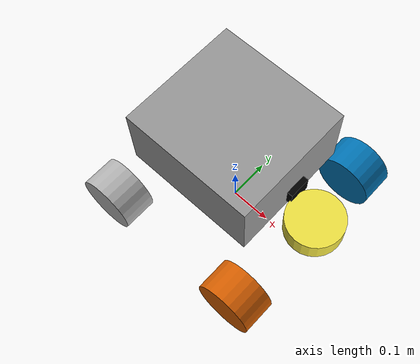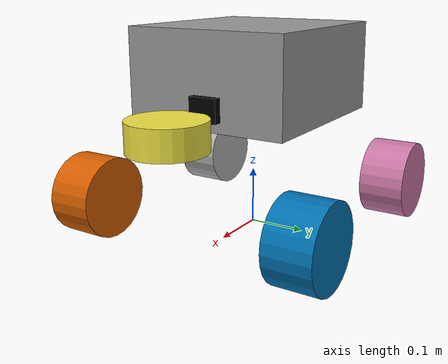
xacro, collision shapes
<?xml version="1.0"?>
<robot xmlns:xacro="http://www.ros.org/wiki/xacro" name="four_wheel_rover">

  <!-- Robot Geometry Parameters -->
  <xacro:property name="L" value="0.31348"/>   <!-- length -->
  <xacro:property name="W" value="0.290"/>     <!-- width -->
  <xacro:property name="H" value="0.160"/>     <!-- height -->
  <xacro:property name="wheel_r" value="0.07"/>  <!-- radius 7cm (14cm diameter) -->
  <xacro:property name="wheel_w" value="0.08"/>  <!-- width -->
  <xacro:property name="clearance" value="0.1325"/>  <!-- 215 mm -->

  <!-- Slight outside offset so wheels stick out correctly -->
  <xacro:property name="wheel_y_offset" value="${W/2 + wheel_w/2 + 0.02}"/>
  <xacro:property name="wheel_x_front" value="${L/2 + 0.03}"/>
  <xacro:property name="wheel_x_back"  value="-${L/2 + 0.02}"/>

  <!-- Physical Material + Mass  -->
  <xacro:property name="rho" value="2700"/>
  <!-- pi was removed because xacro may predefine it in some environments -->

  <!-- Body mass -->
  <xacro:property name="m_body" value="39.27"/>

  <!-- Wheel mass -->
  <xacro:property name="m_wheel" value="1.69"/>

  <!-- Body inertia -->
  <xacro:property name="Ixx_body" value="0.359"/>
  <xacro:property name="Iyy_body" value="0.406"/>
  <xacro:property name="Izz_body" value="0.596"/>

  <!-- Wheel inertia -->
  <xacro:property name="I_wheel_axial" value="0.00196"/>
  <xacro:property name="I_wheel_zz" value="0.00212"/>

  <!-- Base footprint -->
  <link name="base_footprint"/>

  <!-- BODY LINK -->
  <link name="base_link">

    <visual>
      <origin xyz="0 0 ${wheel_r + clearance + H/2}" rpy="0 0 0"/>
      <geometry>
        <box size="${L} ${W} ${H}"/>
      </geometry>
      <material name="grey"><color rgba="0.6 0.6 0.6 1"/></material>
    </visual>

    <collision>
      <origin xyz="0 0 ${wheel_r + clearance + H/2}" rpy="0 0 0"/>
      <geometry>
        <box size="${L} ${W} ${H}"/>
      </geometry>
    </collision>

    <inertial>
      <origin xyz="0 0 ${wheel_r + clearance + H/2}" rpy="0 0 0"/>
      <mass value="${m_body}"/>
      <inertia ixx="${Ixx_body}" ixy="0" ixz="0"
               iyy="${Iyy_body}" iyz="0"
               izz="${Izz_body}"/>
    </inertial>
  </link>

  <joint name="base_joint" type="fixed">
    <parent link="base_footprint"/>
    <child link="base_link"/>
  </joint>

  <!-- IMU LINK -->
  <link name="imu_link">
    <visual>
      <origin xyz="0 0 0" rpy="0 0 0"/>
      <geometry>
        <box size="0.08 0.05 0.04"/>
      </geometry>
      <material name="black"><color rgba="0.0 0.0 0.0 1"/></material>
    </visual>

    <collision>
      <origin xyz="0 0 0" rpy="0 0 0"/>
      <geometry>
        <box size="0.08 0.05 0.04"/>
      </geometry>
    </collision>

    <inertial>
      <mass value="0.2"/>
      <origin xyz="0 0 0" rpy="0 0 0"/>
      <inertia ixx="0.0005" ixy="0.0" ixz="0.0" iyy="0.0005" iyz="0.0" izz="0.0005"/>
    </inertial>
  </link>

  <joint name="imu_joint" type="fixed">
    <parent link="base_link"/>
    <child link="imu_link"/>
    <origin xyz="0.13 0.01 0.24" rpy="0 0 0"/>
  </joint>

  <!-- WHEEL MACRO -->
  <xacro:macro name="wheel" params="wheel_name x y mesh_stl mesh_rpy joint_axis">
    <link name="${wheel_name}_link">
      <visual>
        <!-- apply mesh_rpy only here (no extra implicit rotations) -->
        <origin xyz="0 0 0" rpy="${mesh_rpy}"/>
        <geometry>
          <mesh filename="${mesh_stl}" scale="1.4 1.4 1.4"/>
        </geometry>
      </visual>

      <collision>
        <!-- approximate collision as cylinder so collisions behave nicely -->
        <!-- collision origin rotated to put cylinder axis aligned with joint axis if needed -->
        <origin xyz="0 0 0" rpy="${mesh_rpy}"/>
        <geometry>
          <cylinder radius="${wheel_r}" length="${wheel_w}"/>
        </geometry>
      </collision>

      <inertial>
        <origin xyz="0 0 0" rpy="${mesh_rpy}"/>
        <mass value="${m_wheel}"/>
        <!-- simple wheel inertia -->
        <inertia ixx="0.00089" ixy="0" ixz="0" iyy="0.00089" iyz="0" izz="0.0013057"/>
      </inertial>
    </link>

    <joint name="${wheel_name}_joint" type="continuous">
      <!-- joint placed at the wheel contact point: z set to wheel_r -->
      <!-- joint origin uses x,y from macro + wheel_r -->
      <origin xyz="${x} ${y} ${wheel_r}" rpy="0 0 0"/>
      <parent link="base_link"/>
      <child link="${wheel_name}_link"/>
      <!-- allow the user-supplied axis for the joint -->
      <axis xyz="${joint_axis}"/>
      <dynamics damping="0.1" friction="0.1"/>
    </joint>
  </xacro:macro>

  <!-- LiDAR link (visual/collision/inertial only) -->
  <link name="lidar_link">
    <visual>
      <origin xyz="0 0 0" rpy="0 0 0"/>
      <geometry>
          <mesh filename="package://rover_description/meshes/Lidar.STL" scale="1 1 1"/>
      </geometry>

    </visual>

    <collision>
      <origin xyz="0 0 0" rpy="0 0 0"/>
      <geometry>
        <cylinder radius="0.065" length="0.05"/>
      </geometry>
    </collision>

    <inertial>
      <mass value="0.3"/>
      <origin xyz="0 0 0" rpy="0 0 0"/>
      <inertia ixx="0.001" ixy="0.0" ixz="0.0" iyy="0.001" iyz="0.0" izz="0.001"/>
    </inertial>
  </link>

  <!-- LiDAR joint -->
  <joint name="lidar_joint" type="fixed">
    <parent link="base_link"/>
    <child link="lidar_link"/>
    <!-- Mount at front-center of rover, facing forward horizontally -->
    <origin xyz="0.23 -0.01 0.21" rpy="0 0 0"/>
  </joint>

  <xacro:if value="false">
    <!-- Camera link + optical frame -->
    <link name="camera_link">
      <visual>
        <!-- small housing placed on the front of the rover -->
        <origin xyz="0 0 0" rpy="0 0 0"/>
        <geometry>
          <box size="0.08 0.05 0.04"/>
        </geometry>
        <material name="black"><color rgba="0.0 0.0 0.0 1"/></material>
      </visual>

      <collision>
        <origin xyz="0 0 0" rpy="0 0 0"/>
        <geometry>
          <box size="0.08 0.05 0.04"/>
        </geometry>
      </collision>

      <inertial>
        <mass value="0.2"/>
        <origin xyz="0 0 0" rpy="0 0 0"/>
        <inertia ixx="0.0005" ixy="0.0" ixz="0.0" iyy="0.0005" iyz="0.0" izz="0.0005"/>
      </inertial>
    </link>

    <!-- Camera optical frame (use this frame for image topic) -->
    <link name="camera_optical_frame"/>

    <!-- Camera mount joint -->
    <joint name="camera_joint" type="fixed">
      <parent link="base_link"/>
      <child link="camera_link"/>
      <!-- placed on front-center at top; facing forward horizontally -->
      <origin xyz="0.13 -0.01 0.45" rpy="0 0 0"/>
    </joint>

    <!-- Optical frame fixed to camera_link (allows correct TF for image viewer/rviz) -->
    <joint name="camera_to_optical" type="fixed">
      <parent link="camera_link"/>
      <child link="camera_optical_frame"/>
      <!-- keep identity transform; change rpy if you need optical axes rotated -->
      <origin xyz="0 0 0" rpy="0 0 0"/>
    </joint>
  </xacro:if>

  <!-- FOUR WHEELS -->

  <!-- Front Left -->
    <xacro:wheel wheel_name="front_left"
                    x="${wheel_x_front}"
                    y="${wheel_y_offset}"
                    mesh_stl="package://rover_description/meshes/wheel4.STL"
                    mesh_rpy="-1.57 0 0"
                    joint_axis="0 0 1"/>
  <!-- Front Right -->
    <xacro:wheel wheel_name="front_right"
                    x="${wheel_x_front}"
                    y="-${wheel_y_offset}"
                    mesh_stl="package://rover_description/meshes/wheel2.STL"
                    mesh_rpy="-1.57 0 0"
                    joint_axis="0 0 1"/>
    <!-- Rear Left -->
    <xacro:wheel wheel_name="rear_left"
                    x="${wheel_x_back}"
                    y="${wheel_y_offset}"
                    mesh_stl="package://rover_description/meshes/wheel3.STL"
                    mesh_rpy="-1.57 0 0"
                    joint_axis="0 0 1"/>
    <!-- Rear Right -->
    <xacro:wheel wheel_name="rear_right"
                    x="${wheel_x_back}"
                    y="-${wheel_y_offset}"
                    mesh_stl="package://rover_description/meshes/wheel1.STL"
                    mesh_rpy="-1.57 0 0"
                    joint_axis="0 0 1"/>

  <!-- GAZEBO PLUGINS (Inline for Harmonic) -->
  <gazebo>

    <plugin filename="libgz-sim8-diff-drive-system.so" name="gz::sim::systems::DiffDrive">
      <!-- LEFT wheels -->
      <left_joint>front_left_joint</left_joint>
      <left_joint>rear_left_joint</left_joint>

      <!-- RIGHT wheels -->
      <right_joint>front_right_joint</right_joint>
      <right_joint>rear_right_joint</right_joint>

      <!-- geometry -->
      <wheel_separation>${2 * wheel_y_offset}</wheel_separation>
      <wheel_diameter>${2 * wheel_r}</wheel_diameter>

      <!-- topics -->
      <topic>cmd_vel</topic>
      <odom_topic>odom</odom_topic>
      <tf_topic>/tf</tf_topic>

      <!-- frames -->
      <frame_id>odom</frame_id>
      <child_frame_id>base_footprint</child_frame_id>

      <odom_publisher_frequency>50</odom_publisher_frequency>
    </plugin>

    <plugin filename="libgz-sim8-joint-state-publisher-system.so"
            name="gz::sim::systems::JointStatePublisher">
      <topic>joint_states</topic>
    </plugin>

    <!-- Global sensors system (required for all sensors) -->
    <plugin filename="libgz-sim8-sensors-system.so"
            name="gz::sim::systems::Sensors">
    </plugin>
  </gazebo>

  <!-- LiDAR sensor attached to lidar_link (proper gazebo reference structure) -->
  <gazebo reference="lidar_link">
    <sensor name="lidar_sensor" type="gpu_lidar">
      <frame_id>lidar_link</frame_id>
      <pose>0 0 0 0 0 0</pose>
      <topic>scan</topic>
      <update_rate>10</update_rate>
      <ray>
        <scan>
          <horizontal>
            <samples>720</samples>
            <resolution>1</resolution>
            <min_angle>-3.14159</min_angle>
            <max_angle>3.14159</max_angle>
          </horizontal>
          <vertical>
            <samples>1</samples>
            <resolution>0.01</resolution>
            <min_angle>0</min_angle>
            <max_angle>0</max_angle>
          </vertical>
        </scan>
        <range>
          <min>0.08</min>
          <max>10.0</max>
          <resolution>0.01</resolution>
        </range>
      </ray>
      <visualize>true</visualize>
    </sensor>
  </gazebo>

  <xacro:if value="false">
    <!-- Camera sensor attached to camera_link -->
    <gazebo reference="camera_link">
      <sensor name="camera_sensor" type="camera">
        <topic>camera/image_raw</topic>
        <update_rate>30</update_rate>
        <camera>
          <horizontal_fov>1.047</horizontal_fov>
          <image>
            <width>640</width>
            <height>480</height>
            <format>R8G8B8</format>
          </image>
          <clip>
            <near>0.1</near>
            <far>50.0</far>
          </clip>
        </camera>
      </sensor>
    </gazebo>
  </xacro:if>

</robot>
